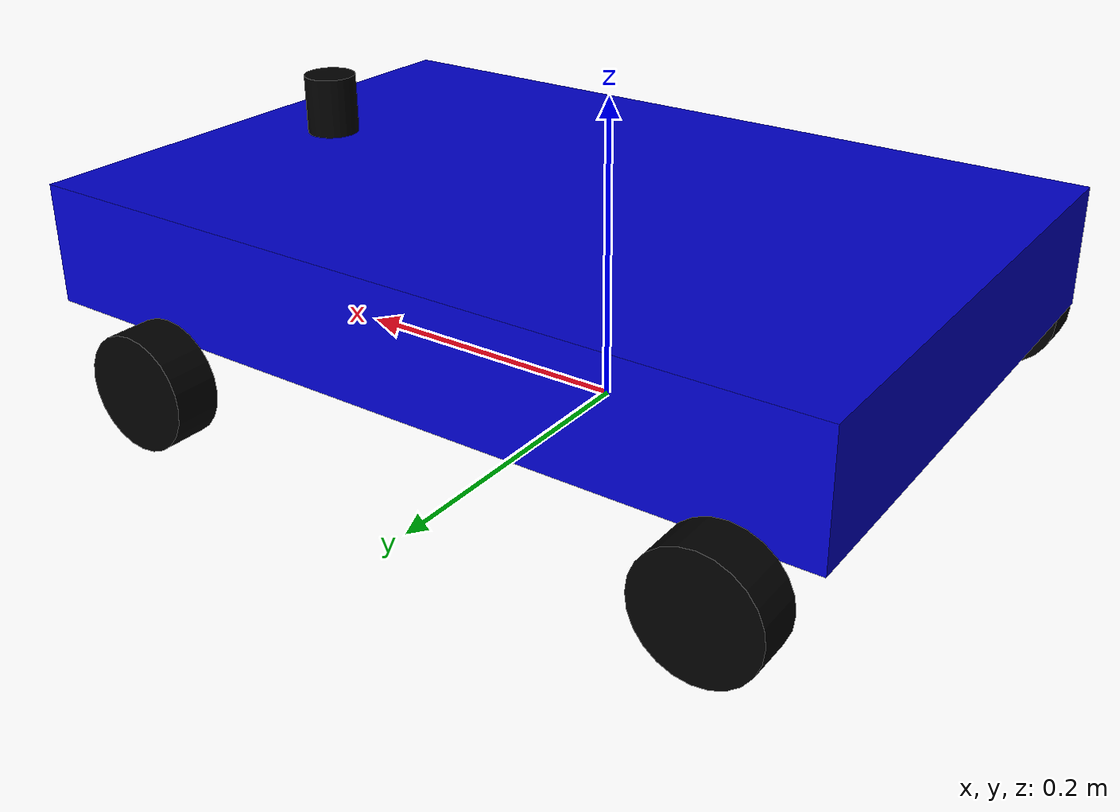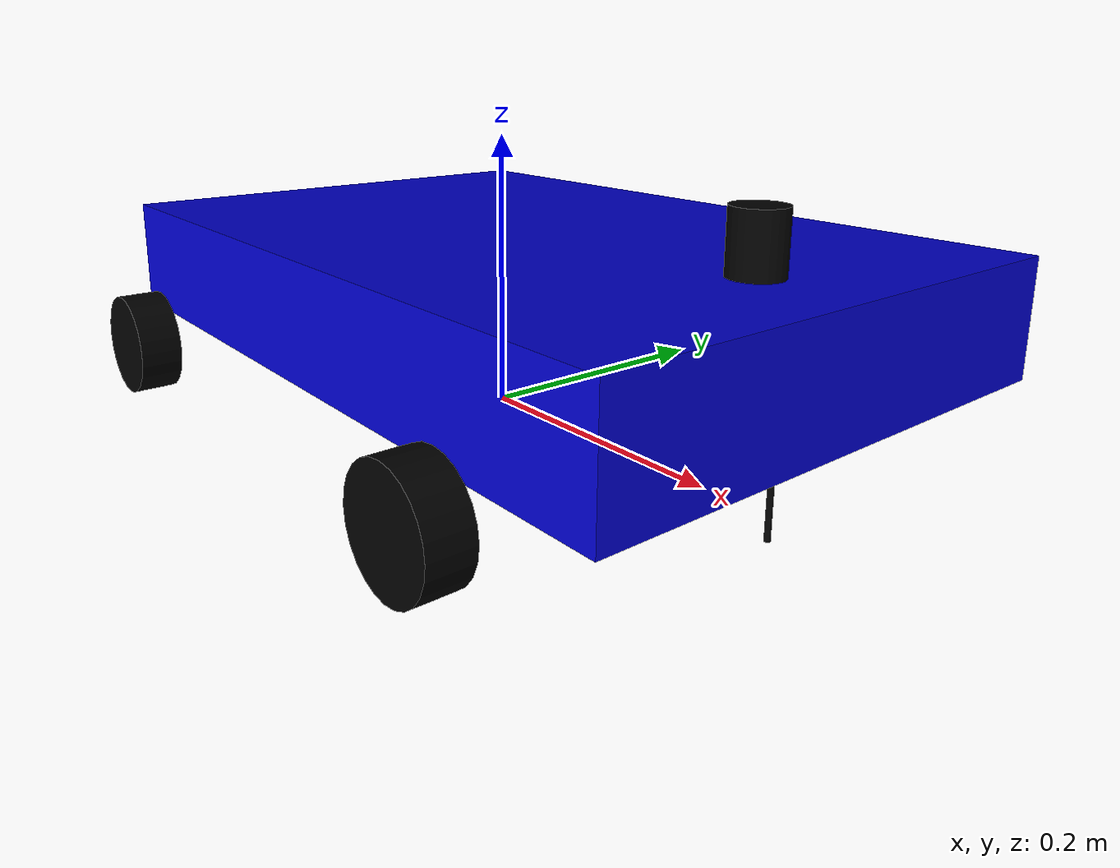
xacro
<?xml version="1.0"?>
<robot name="nouzen" xmlns:xacro="http://www.ros.org/wiki/xacro">

  <!-- Include all components -->
  <xacro:include filename="nouzen_materials.xacro"/>
  <xacro:include filename="nouzen_description.xacro"/>
  <xacro:include filename="nouzen_ros2_control.xacro"/>

  <!-- Instantiate robot geometry -->
  <xacro:nouzen_base/>

  <!-- Instantiate ROS2 control -->
  <xacro:nouzen_ros2_control name="nouzen_system"/>

</robot>

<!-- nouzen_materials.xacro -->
<robot xmlns:xacro="http://www.ros.org/wiki/xacro">

  <material name="black">
    <color rgba="0.0 0.0 0.0 1.0"/>
  </material>

  <material name="orange">
    <color rgba="1.0 0.423529 0.0 1.0"/>
  </material>

  <material name="white">
    <color rgba="1.0 1.0 1.0 1.0"/>
  </material>

  <material name="blue">
    <color rgba="0.0 0.0 0.8 1.0"/>
  </material>

  <material name="red">
    <color rgba="0.8 0.0 0.0 1.0"/>
  </material>

</robot>

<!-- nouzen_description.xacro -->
<robot xmlns:xacro="http://www.ros.org/wiki/xacro">

  <xacro:macro name="nouzen_base">

  <!-- ROBOT DIMENSIONS (NOUZEN 4WD) -->
  <xacro:property name="PI" value="3.1415926535897931"/>

  <!-- CHASSIS -->
  <xacro:property name="base_mass" value="2.5" />
  <xacro:property name="base_width" value="0.365" />   <!-- 365mm -->
  <xacro:property name="base_length" value="0.540" />  <!-- 540mm -->
  <xacro:property name="base_height" value="0.080" />  <!-- 80mm -->

  <!-- WHEELS -->
  <xacro:property name="wheel_mass" value="0.15" />
  <xacro:property name="wheel_radius" value="0.0375" />  <!-- 75mm diameter / 2 -->
  <xacro:property name="wheel_width" value="0.030" />    <!-- Estimate 30mm width -->

  <!-- WHEEL POSITIONING -->
  <xacro:property name="wheelbase" value="0.385" />      <!-- Distance front-rear (estimate) -->
  <xacro:property name="track_width" value="0.410" />    <!-- Distance left-right -->

  <!-- BASE LINK (ground reference) -->
  <link name="base_link" />

  <!-- BASE FRAME (chassis) -->
  <joint name="base_frame_joint" type="fixed">
    <parent link="base_link"/>
    <child link="base_frame"/>
    <origin xyz="0.030 0 ${wheel_radius + base_height/2.0 + 0.020}" rpy="0 0 0"/>
  </joint>

  <link name="base_frame">
    <collision>
      <origin xyz="0 0 0" rpy="0 0 0"/>
      <geometry>
        <box size="${base_length} ${base_width} ${base_height}"/>
      </geometry>
    </collision>

    <visual>
      <origin xyz="0 0 0" rpy="0 0 0"/>
      <geometry>
        <box size="${base_length} ${base_width} ${base_height}"/>
      </geometry>
      <material name="blue"/>
    </visual>

    <inertial>
      <origin xyz="0 0 0" rpy="0 0 0"/>
      <mass value="${base_mass}"/>
      <inertia
        ixx="${base_mass / 12.0 * (base_length*base_length + base_height*base_height)}" ixy="0.0" ixz="0.0"
        iyy="${base_mass / 12.0 * (base_height*base_height + base_width*base_width)}" iyz="0.0"
        izz="${base_mass / 12.0 * (base_width*base_width + base_length*base_length)}"/>
    </inertial>
  </link>

  <!-- FRONT LEFT WHEEL -->
  <joint name="front_left_wheel_joint" type="continuous">
    <parent link="base_link"/>
    <child link="front_left_wheel"/>
    <origin xyz="${wheelbase/2} ${track_width/2} ${wheel_radius}" rpy="0 0 0"/>
    <axis xyz="0 1 0"/>
    <dynamics damping="0.2"/>
  </joint>

  <link name="front_left_wheel">
    <collision>
      <origin xyz="0 0 0" rpy="${PI/2} 0 0"/>
      <geometry>
        <cylinder length="${wheel_width}" radius="${wheel_radius}"/>
      </geometry>
    </collision>

    <visual>
      <origin xyz="0 0 0" rpy="${PI/2} 0 0"/>
      <geometry>
        <cylinder length="${wheel_width}" radius="${wheel_radius}"/>
      </geometry>
      <material name="black"/>
    </visual>

    <inertial>
      <origin xyz="0 0 0" rpy="${PI/2} 0 0"/>
      <mass value="${wheel_mass}"/>
      <inertia
        ixx="${wheel_mass / 12.0 * (3*wheel_radius*wheel_radius + wheel_width*wheel_width)}" ixy="0.0" ixz="0.0"
        iyy="${wheel_mass / 2.0 * wheel_radius*wheel_radius}" iyz="0.0"
        izz="${wheel_mass / 12.0 * (3*wheel_radius*wheel_radius + wheel_width*wheel_width)}"/>
    </inertial>
  </link>

  <!-- FRONT RIGHT WHEEL -->
  <joint name="front_right_wheel_joint" type="continuous">
    <parent link="base_link"/>
    <child link="front_right_wheel"/>
    <origin xyz="${wheelbase/2} ${-track_width/2} ${wheel_radius}" rpy="0 0 0"/>
    <axis xyz="0 1 0"/>
    <dynamics damping="0.2"/>
  </joint>

  <link name="front_right_wheel">
    <collision>
      <origin xyz="0 0 0" rpy="${PI/2} 0 0"/>
      <geometry>
        <cylinder length="${wheel_width}" radius="${wheel_radius}"/>
      </geometry>
    </collision>

    <visual>
      <origin xyz="0 0 0" rpy="${PI/2} 0 0"/>
      <geometry>
        <cylinder length="${wheel_width}" radius="${wheel_radius}"/>
      </geometry>
      <material name="black"/>
    </visual>

    <inertial>
      <origin xyz="0 0 0" rpy="${PI/2} 0 0"/>
      <mass value="${wheel_mass}"/>
      <inertia
        ixx="${wheel_mass / 12.0 * (3*wheel_radius*wheel_radius + wheel_width*wheel_width)}" ixy="0.0" ixz="0.0"
        iyy="${wheel_mass / 2.0 * wheel_radius*wheel_radius}" iyz="0.0"
        izz="${wheel_mass / 12.0 * (3*wheel_radius*wheel_radius + wheel_width*wheel_width)}"/>
    </inertial>
  </link>

  <!-- REAR LEFT WHEEL -->
  <joint name="rear_left_wheel_joint" type="continuous">
    <parent link="base_link"/>
    <child link="rear_left_wheel"/>
    <origin xyz="${-wheelbase/2} ${track_width/2} ${wheel_radius}" rpy="0 0 0"/>
    <axis xyz="0 1 0"/>
    <dynamics damping="0.2"/>
  </joint>

  <link name="rear_left_wheel">
    <collision>
      <origin xyz="0 0 0" rpy="${PI/2} 0 0"/>
      <geometry>
        <cylinder length="${wheel_width}" radius="${wheel_radius}"/>
      </geometry>
    </collision>

    <visual>
      <origin xyz="0 0 0" rpy="${PI/2} 0 0"/>
      <geometry>
        <cylinder length="${wheel_width}" radius="${wheel_radius}"/>
      </geometry>
      <material name="black"/>
    </visual>

    <inertial>
      <origin xyz="0 0 0" rpy="${PI/2} 0 0"/>
      <mass value="${wheel_mass}"/>
      <inertia
        ixx="${wheel_mass / 12.0 * (3*wheel_radius*wheel_radius + wheel_width*wheel_width)}" ixy="0.0" ixz="0.0"
        iyy="${wheel_mass / 2.0 * wheel_radius*wheel_radius}" iyz="0.0"
        izz="${wheel_mass / 12.0 * (3*wheel_radius*wheel_radius + wheel_width*wheel_width)}"/>
    </inertial>
  </link>

  <!-- REAR RIGHT WHEEL -->
  <joint name="rear_right_wheel_joint" type="continuous">
    <parent link="base_link"/>
    <child link="rear_right_wheel"/>
    <origin xyz="${-wheelbase/2} ${-track_width/2} ${wheel_radius}" rpy="0 0 0"/>
    <axis xyz="0 1 0"/>
    <dynamics damping="0.2"/>
  </joint>

  <link name="rear_right_wheel">
    <collision>
      <origin xyz="0 0 0" rpy="${PI/2} 0 0"/>
      <geometry>
        <cylinder length="${wheel_width}" radius="${wheel_radius}"/>
      </geometry>
    </collision>

    <visual>
      <origin xyz="0 0 0" rpy="${PI/2} 0 0"/>
      <geometry>
        <cylinder length="${wheel_width}" radius="${wheel_radius}"/>
      </geometry>
      <material name="black"/>
    </visual>

    <inertial>
      <origin xyz="0 0 0" rpy="${PI/2} 0 0"/>
      <mass value="${wheel_mass}"/>
      <inertia
        ixx="${wheel_mass / 12.0 * (3*wheel_radius*wheel_radius + wheel_width*wheel_width)}" ixy="0.0" ixz="0.0"
        iyy="${wheel_mass / 2.0 * wheel_radius*wheel_radius}" iyz="0.0"
        izz="${wheel_mass / 12.0 * (3*wheel_radius*wheel_radius + wheel_width*wheel_width)}"/>
    </inertial>
  </link>

  <!-- LIDAR LD19 -->
  <joint name="lidar_joint" type="fixed">
    <parent link="base_link"/>
    <child link="base_laser"/>
    <origin xyz="0.230 0 ${wheel_radius + base_height + 0.020 + 0.020}" rpy="0 0 0"/>
  </joint>

  <link name="base_laser">
    <visual>
      <origin xyz="0 0 0" rpy="0 0 0"/>
      <geometry>
        <cylinder length="0.041" radius="0.0175"/>
      </geometry>
      <material name="black"/>
    </visual>
    <inertial>
      <origin xyz="0 0 0" rpy="0 0 0"/>
      <mass value="0.180"/>
      <inertia ixx="0.0001" ixy="0.0" ixz="0.0"
               iyy="0.0001" iyz="0.0"
               izz="0.0001"/>
    </inertial>
  </link>

    <joint name="camera_joint" type="fixed">
        <parent link="base_link"/>
        <child link="camera_link"/>
        <origin xyz="0.250 0 0.085" rpy="0 0 0"/>
    </joint>

    <link name="camera_link">
        <visual>
            <geometry>
                <box size="0.024 0.094 0.029"/>
            </geometry>
            <material name="black"/>
        </visual>
        <visual>
            <origin xyz="0 0 -0.05"/>
            <geometry>
                <cylinder radius="0.002" length="0.1"/>
            </geometry>
            <material name="black"/>
        </visual>
    </link>

    <joint name="camera_optical_joint" type="fixed">
        <parent link="camera_link"/>
        <child link="camera_link_optical"/>
        <origin xyz="0 0 0" rpy="${-pi/2} 0 ${-pi/2}"/>
    </joint>

    <link name="camera_link_optical"></link>

  </xacro:macro>

</robot>
